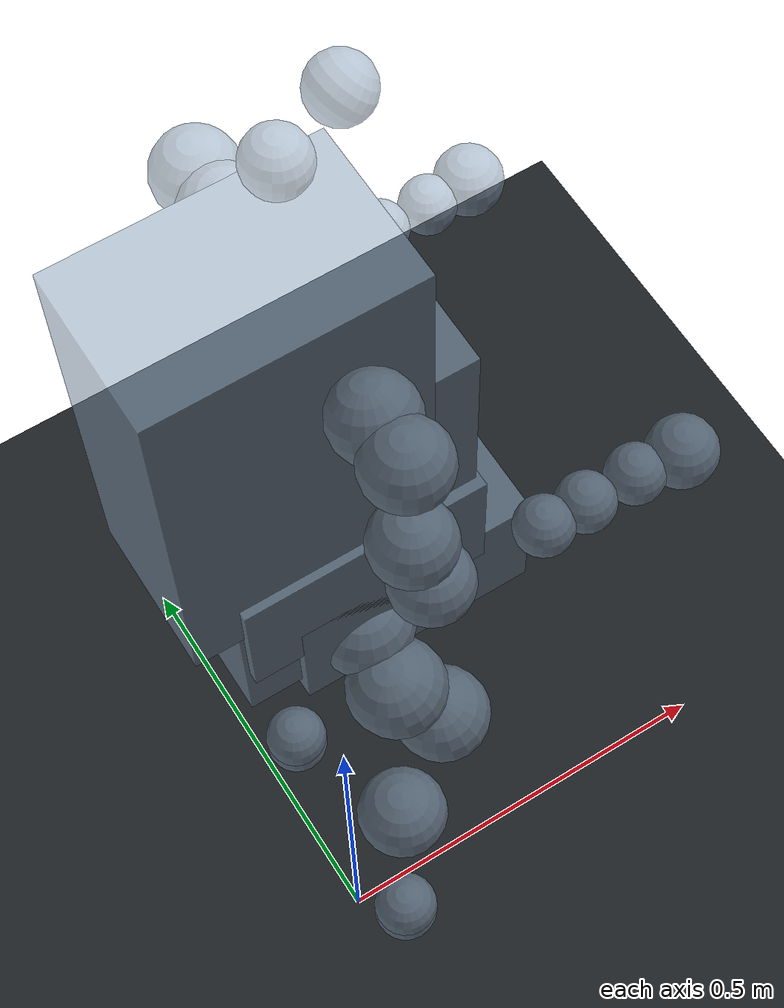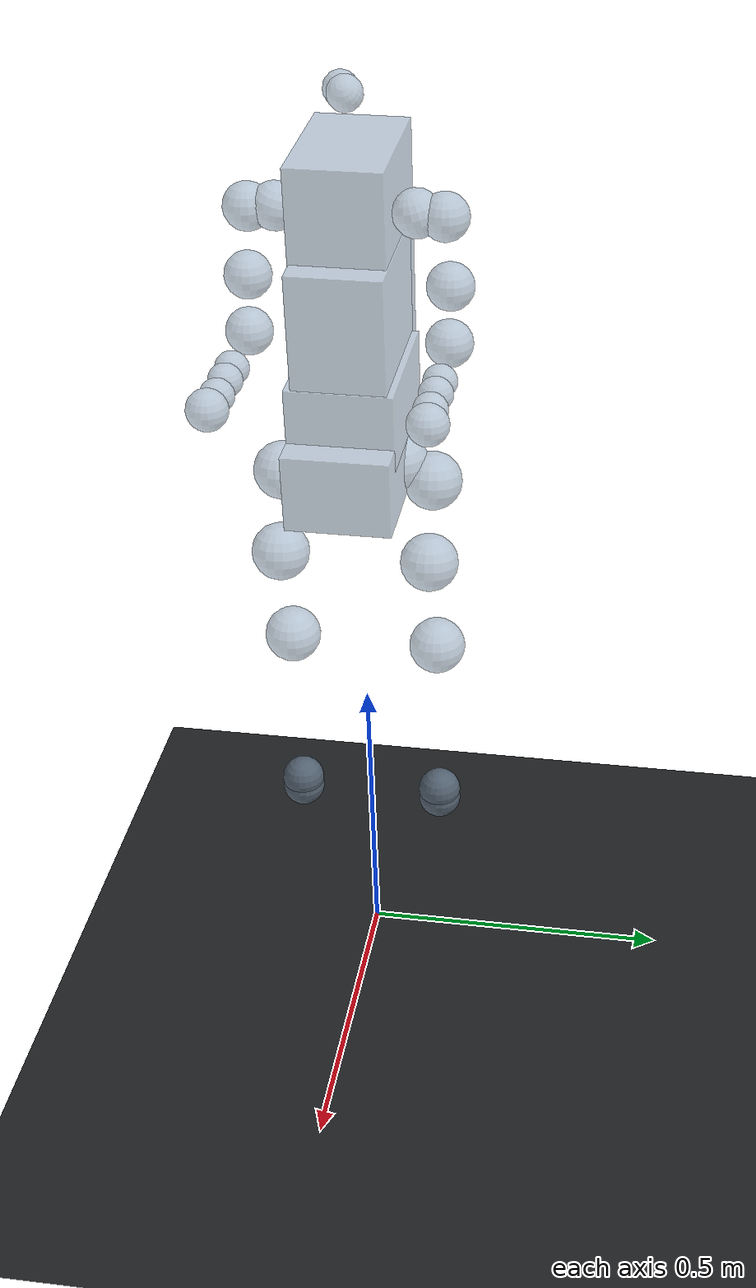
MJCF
<?xml version='1.0' encoding='utf-8'?>
<mujoco model="g1_29dof">
  <compiler angle="radian" />
  <option timestep="0.008333333" gravity="0 0 -9.81" />
  <default>
    <joint damping="0.3" armature="0.01" />
    <geom friction="0.8 0.01 0.001" density="250" />
  </default>
  <worldbody>
    <geom name="floor" type="plane" size="3 3 0.02" rgba="0.12 0.13 0.14 1" />
    <body name="pelvis" pos="0 0 1.05">
      <freejoint name="pelvis_freejoint" />
      <geom name="pelvis_proxy" type="box" size="0.11 0.08 0.06" rgba="0.55 0.65 0.75 0.55" />
      <body name="pelvis_contour_link" pos="0 0 0" quat="1 0 0 0">
        <geom name="pelvis_contour_link_proxy" type="box" size="0.11 0.08 0.06" rgba="0.55 0.65 0.75 0.55" />
      </body>
      <body name="left_hip_pitch_link" pos="0 0.064452 -0.1027" quat="1 0 0 0">
        <joint name="left_hip_pitch_joint" type="hinge" axis="0 1 0" damping="0.3" armature="0.01" limited="true" range="-2.5307 2.8798" />
        <geom name="left_hip_pitch_link_proxy" type="sphere" size="0.045" rgba="0.55 0.65 0.75 0.55" />
        <body name="left_hip_roll_link" pos="0 0.052 -0.030465" quat="0.996178685 0 -0.08733858026 0">
          <joint name="left_hip_roll_joint" type="hinge" axis="1 0 0" damping="0.3" armature="0.01" limited="true" range="-0.5236 2.9671" />
          <geom name="left_hip_roll_link_proxy" type="sphere" size="0.045" rgba="0.55 0.65 0.75 0.55" />
          <body name="left_hip_yaw_link" pos="0.025001 0 -0.12412" quat="1 0 0 0">
            <joint name="left_hip_yaw_joint" type="hinge" axis="0 0 1" damping="0.3" armature="0.01" limited="true" range="-2.7576 2.7576" />
            <geom name="left_hip_yaw_link_proxy" type="sphere" size="0.045" rgba="0.55 0.65 0.75 0.55" />
            <body name="left_knee_link" pos="-0.078273 0.0021489 -0.17734" quat="0.996178685 0 0.08733858026 0">
              <joint name="left_knee_joint" type="hinge" axis="0 1 0" damping="0.3" armature="0.01" limited="true" range="-0.087267 2.8798" />
              <geom name="left_knee_link_proxy" type="sphere" size="0.045" rgba="0.55 0.65 0.75 0.55" />
              <body name="left_ankle_pitch_link" pos="0 -9.4445e-05 -0.30001" quat="1 0 0 0">
                <joint name="left_ankle_pitch_joint" type="hinge" axis="0 1 0" damping="0.3" armature="0.01" limited="true" range="-0.87267 0.5236" />
                <geom name="left_ankle_pitch_link_proxy" type="sphere" size="0.035" rgba="0.55 0.65 0.75 0.55" />
                <body name="left_ankle_roll_link" pos="0 0 -0.017558" quat="1 0 0 0">
                  <joint name="left_ankle_roll_joint" type="hinge" axis="1 0 0" damping="0.3" armature="0.01" limited="true" range="-0.2618 0.2618" />
                  <geom name="left_ankle_roll_link_proxy" type="sphere" size="0.035" rgba="0.55 0.65 0.75 0.55" />
                </body>
              </body>
            </body>
          </body>
        </body>
      </body>
      <body name="right_hip_pitch_link" pos="0 -0.064452 -0.1027" quat="1 0 0 0">
        <joint name="right_hip_pitch_joint" type="hinge" axis="0 1 0" damping="0.3" armature="0.01" limited="true" range="-2.5307 2.8798" />
        <geom name="right_hip_pitch_link_proxy" type="sphere" size="0.045" rgba="0.55 0.65 0.75 0.55" />
        <body name="right_hip_roll_link" pos="0 -0.052 -0.030465" quat="0.996178685 0 -0.08733858026 0">
          <joint name="right_hip_roll_joint" type="hinge" axis="1 0 0" damping="0.3" armature="0.01" limited="true" range="-2.9671 0.5236" />
          <geom name="right_hip_roll_link_proxy" type="sphere" size="0.045" rgba="0.55 0.65 0.75 0.55" />
          <body name="right_hip_yaw_link" pos="0.025001 0 -0.12412" quat="1 0 0 0">
            <joint name="right_hip_yaw_joint" type="hinge" axis="0 0 1" damping="0.3" armature="0.01" limited="true" range="-2.7576 2.7576" />
            <geom name="right_hip_yaw_link_proxy" type="sphere" size="0.045" rgba="0.55 0.65 0.75 0.55" />
            <body name="right_knee_link" pos="-0.078273 -0.0021489 -0.17734" quat="0.996178685 0 0.08733858026 0">
              <joint name="right_knee_joint" type="hinge" axis="0 1 0" damping="0.3" armature="0.01" limited="true" range="-0.087267 2.8798" />
              <geom name="right_knee_link_proxy" type="sphere" size="0.045" rgba="0.55 0.65 0.75 0.55" />
              <body name="right_ankle_pitch_link" pos="0 9.4445e-05 -0.30001" quat="1 0 0 0">
                <joint name="right_ankle_pitch_joint" type="hinge" axis="0 1 0" damping="0.3" armature="0.01" limited="true" range="-0.87267 0.5236" />
                <geom name="right_ankle_pitch_link_proxy" type="sphere" size="0.035" rgba="0.55 0.65 0.75 0.55" />
                <body name="right_ankle_roll_link" pos="0 0 -0.017558" quat="1 0 0 0">
                  <joint name="right_ankle_roll_joint" type="hinge" axis="1 0 0" damping="0.3" armature="0.01" limited="true" range="-0.2618 0.2618" />
                  <geom name="right_ankle_roll_link_proxy" type="sphere" size="0.035" rgba="0.55 0.65 0.75 0.55" />
                </body>
              </body>
            </body>
          </body>
        </body>
      </body>
      <body name="waist_yaw_link" pos="0 0 0" quat="1 0 0 0">
        <joint name="waist_yaw_joint" type="hinge" axis="0 0 1" damping="0.3" armature="0.01" limited="true" range="-2.618 2.618" />
        <geom name="waist_yaw_link_proxy" type="sphere" size="0.025" rgba="0.55 0.65 0.75 0.55" />
        <body name="waist_roll_link" pos="-0.0039635 0 0.035" quat="1 0 0 0">
          <joint name="waist_roll_joint" type="hinge" axis="1 0 0" damping="0.3" armature="0.01" limited="true" range="-0.52 0.52" />
          <geom name="waist_roll_link_proxy" type="sphere" size="0.025" rgba="0.55 0.65 0.75 0.55" />
          <body name="torso_link" pos="0 0 0.019" quat="1 0 0 0">
            <joint name="waist_pitch_joint" type="hinge" axis="0 1 0" damping="0.3" armature="0.01" limited="true" range="-0.52 0.52" />
            <geom name="torso_link_proxy" type="box" size="0.11 0.07 0.18" rgba="0.55 0.65 0.75 0.55" />
            <body name="logo_link" pos="0.0039635 0 -0.054" quat="1 0 0 0">
              <geom name="logo_link_proxy" type="sphere" size="0.025" rgba="0.55 0.65 0.75 0.55" />
            </body>
            <body name="head_link" pos="0.0039635 0 -0.054" quat="1 0 0 0">
              <geom name="head_link_proxy" type="sphere" size="0.055" rgba="0.55 0.65 0.75 0.55" />
            </body>
            <body name="waist_support_link" pos="0.0039635 0 -0.054" quat="1 0 0 0">
              <geom name="waist_support_link_proxy" type="sphere" size="0.025" rgba="0.55 0.65 0.75 0.55" />
            </body>
            <body name="imu_in_torso" pos="-0.03959 -0.00224 0.13792" quat="1 0 0 0">
              <geom name="imu_in_torso_proxy" type="box" size="0.11 0.07 0.18" rgba="0.55 0.65 0.75 0.55" />
            </body>
            <body name="d435_link" pos="0.0576235 0.01753 0.41987" quat="0.9149596678 0 0.4035452964 0">
              <geom name="d435_link_proxy" type="sphere" size="0.025" rgba="0.55 0.65 0.75 0.55" />
            </body>
            <body name="mid360_link" pos="0.0002835 3e-05 0.40618" quat="0.9997985785 0 0.02006993878 0">
              <geom name="mid360_link_proxy" type="sphere" size="0.025" rgba="0.55 0.65 0.75 0.55" />
            </body>
            <body name="left_shoulder_pitch_link" pos="0.0039563 0.10022 0.23778" quat="0.9902640744 0.1392014837 1.38722044e-05 -9.868683842e-05">
              <joint name="left_shoulder_pitch_joint" type="hinge" axis="0 1 0" damping="0.3" armature="0.01" limited="true" range="-3.0892 2.6704" />
              <geom name="left_shoulder_pitch_link_proxy" type="sphere" size="0.035" rgba="0.55 0.65 0.75 0.55" />
              <body name="left_shoulder_roll_link" pos="0 0.038 -0.013831" quat="0.9902682553 -0.1391717738 0 0">
                <joint name="left_shoulder_roll_joint" type="hinge" axis="1 0 0" damping="0.3" armature="0.01" limited="true" range="-1.5882 2.2515" />
                <geom name="left_shoulder_roll_link_proxy" type="sphere" size="0.035" rgba="0.55 0.65 0.75 0.55" />
                <body name="left_shoulder_yaw_link" pos="0 0.00624 -0.1032" quat="1 0 0 0">
                  <joint name="left_shoulder_yaw_joint" type="hinge" axis="0 0 1" damping="0.3" armature="0.01" limited="true" range="-2.618 2.618" />
                  <geom name="left_shoulder_yaw_link_proxy" type="sphere" size="0.035" rgba="0.55 0.65 0.75 0.55" />
                  <body name="left_elbow_link" pos="0.015783 0 -0.080518" quat="1 0 0 0">
                    <joint name="left_elbow_joint" type="hinge" axis="0 1 0" damping="0.3" armature="0.01" limited="true" range="-1.0472 2.0944" />
                    <geom name="left_elbow_link_proxy" type="sphere" size="0.035" rgba="0.55 0.65 0.75 0.55" />
                    <body name="left_wrist_roll_link" pos="0.1 0.00188791 -0.01" quat="1 0 0 0">
                      <joint name="left_wrist_roll_joint" type="hinge" axis="1 0 0" damping="0.3" armature="0.01" limited="true" range="-1.972222054 1.972222054" />
                      <geom name="left_wrist_roll_link_proxy" type="sphere" size="0.025" rgba="0.55 0.65 0.75 0.55" />
                      <body name="left_wrist_pitch_link" pos="0.038 0 0" quat="1 0 0 0">
                        <joint name="left_wrist_pitch_joint" type="hinge" axis="0 1 0" damping="0.3" armature="0.01" limited="true" range="-1.614429558 1.614429558" />
                        <geom name="left_wrist_pitch_link_proxy" type="sphere" size="0.025" rgba="0.55 0.65 0.75 0.55" />
                        <body name="left_wrist_yaw_link" pos="0.046 0 0" quat="1 0 0 0">
                          <joint name="left_wrist_yaw_joint" type="hinge" axis="0 0 1" damping="0.3" armature="0.01" limited="true" range="-1.614429558 1.614429558" />
                          <geom name="left_wrist_yaw_link_proxy" type="sphere" size="0.025" rgba="0.55 0.65 0.75 0.55" />
                          <body name="left_rubber_hand" pos="0.0415 0.003 0" quat="1 0 0 0">
                            <geom name="left_rubber_hand_proxy" type="sphere" size="0.03" rgba="0.55 0.65 0.75 0.55" />
                          </body>
                        </body>
                      </body>
                    </body>
                  </body>
                </body>
              </body>
            </body>
            <body name="right_shoulder_pitch_link" pos="0.0039563 -0.10021 0.23778" quat="0.9902640744 -0.1392014837 1.38722044e-05 9.868683842e-05">
              <joint name="right_shoulder_pitch_joint" type="hinge" axis="0 1 0" damping="0.3" armature="0.01" limited="true" range="-3.0892 2.6704" />
              <geom name="right_shoulder_pitch_link_proxy" type="sphere" size="0.035" rgba="0.55 0.65 0.75 0.55" />
              <body name="right_shoulder_roll_link" pos="0 -0.038 -0.013831" quat="0.9902682553 0.1391717738 0 0">
                <joint name="right_shoulder_roll_joint" type="hinge" axis="1 0 0" damping="0.3" armature="0.01" limited="true" range="-2.2515 1.5882" />
                <geom name="right_shoulder_roll_link_proxy" type="sphere" size="0.035" rgba="0.55 0.65 0.75 0.55" />
                <body name="right_shoulder_yaw_link" pos="0 -0.00624 -0.1032" quat="1 0 0 0">
                  <joint name="right_shoulder_yaw_joint" type="hinge" axis="0 0 1" damping="0.3" armature="0.01" limited="true" range="-2.618 2.618" />
                  <geom name="right_shoulder_yaw_link_proxy" type="sphere" size="0.035" rgba="0.55 0.65 0.75 0.55" />
                  <body name="right_elbow_link" pos="0.015783 0 -0.080518" quat="1 0 0 0">
                    <joint name="right_elbow_joint" type="hinge" axis="0 1 0" damping="0.3" armature="0.01" limited="true" range="-1.0472 2.0944" />
                    <geom name="right_elbow_link_proxy" type="sphere" size="0.035" rgba="0.55 0.65 0.75 0.55" />
                    <body name="right_wrist_roll_link" pos="0.1 -0.00188791 -0.01" quat="1 0 0 0">
                      <joint name="right_wrist_roll_joint" type="hinge" axis="1 0 0" damping="0.3" armature="0.01" limited="true" range="-1.972222054 1.972222054" />
                      <geom name="right_wrist_roll_link_proxy" type="sphere" size="0.025" rgba="0.55 0.65 0.75 0.55" />
                      <body name="right_wrist_pitch_link" pos="0.038 0 0" quat="1 0 0 0">
                        <joint name="right_wrist_pitch_joint" type="hinge" axis="0 1 0" damping="0.3" armature="0.01" limited="true" range="-1.614429558 1.614429558" />
                        <geom name="right_wrist_pitch_link_proxy" type="sphere" size="0.025" rgba="0.55 0.65 0.75 0.55" />
                        <body name="right_wrist_yaw_link" pos="0.046 0 0" quat="1 0 0 0">
                          <joint name="right_wrist_yaw_joint" type="hinge" axis="0 0 1" damping="0.3" armature="0.01" limited="true" range="-1.614429558 1.614429558" />
                          <geom name="right_wrist_yaw_link_proxy" type="sphere" size="0.025" rgba="0.55 0.65 0.75 0.55" />
                          <body name="right_rubber_hand" pos="0.0415 -0.003 0" quat="1 0 0 0">
                            <geom name="right_rubber_hand_proxy" type="sphere" size="0.03" rgba="0.55 0.65 0.75 0.55" />
                          </body>
                        </body>
                      </body>
                    </body>
                  </body>
                </body>
              </body>
            </body>
          </body>
        </body>
      </body>
      <body name="imu_in_pelvis" pos="0.04525 0 -0.08339" quat="1 0 0 0">
        <geom name="imu_in_pelvis_proxy" type="box" size="0.11 0.08 0.06" rgba="0.55 0.65 0.75 0.55" />
      </body>
    </body>
  </worldbody>
  <actuator>
    <position name="left_hip_pitch_joint_position" joint="left_hip_pitch_joint" kp="15" ctrlrange="-2.5307 2.8798" />
    <position name="left_hip_roll_joint_position" joint="left_hip_roll_joint" kp="15" ctrlrange="-0.5236 2.9671" />
    <position name="left_hip_yaw_joint_position" joint="left_hip_yaw_joint" kp="15" ctrlrange="-2.7576 2.7576" />
    <position name="left_knee_joint_position" joint="left_knee_joint" kp="15" ctrlrange="-0.087267 2.8798" />
    <position name="left_ankle_pitch_joint_position" joint="left_ankle_pitch_joint" kp="15" ctrlrange="-0.87267 0.5236" />
    <position name="left_ankle_roll_joint_position" joint="left_ankle_roll_joint" kp="15" ctrlrange="-0.2618 0.2618" />
    <position name="right_hip_pitch_joint_position" joint="right_hip_pitch_joint" kp="15" ctrlrange="-2.5307 2.8798" />
    <position name="right_hip_roll_joint_position" joint="right_hip_roll_joint" kp="15" ctrlrange="-2.9671 0.5236" />
    <position name="right_hip_yaw_joint_position" joint="right_hip_yaw_joint" kp="15" ctrlrange="-2.7576 2.7576" />
    <position name="right_knee_joint_position" joint="right_knee_joint" kp="15" ctrlrange="-0.087267 2.8798" />
    <position name="right_ankle_pitch_joint_position" joint="right_ankle_pitch_joint" kp="15" ctrlrange="-0.87267 0.5236" />
    <position name="right_ankle_roll_joint_position" joint="right_ankle_roll_joint" kp="15" ctrlrange="-0.2618 0.2618" />
    <position name="waist_yaw_joint_position" joint="waist_yaw_joint" kp="15" ctrlrange="-2.618 2.618" />
    <position name="waist_roll_joint_position" joint="waist_roll_joint" kp="15" ctrlrange="-0.52 0.52" />
    <position name="waist_pitch_joint_position" joint="waist_pitch_joint" kp="15" ctrlrange="-0.52 0.52" />
    <position name="left_shoulder_pitch_joint_position" joint="left_shoulder_pitch_joint" kp="15" ctrlrange="-3.0892 2.6704" />
    <position name="left_shoulder_roll_joint_position" joint="left_shoulder_roll_joint" kp="15" ctrlrange="-1.5882 2.2515" />
    <position name="left_shoulder_yaw_joint_position" joint="left_shoulder_yaw_joint" kp="15" ctrlrange="-2.618 2.618" />
    <position name="left_elbow_joint_position" joint="left_elbow_joint" kp="15" ctrlrange="-1.0472 2.0944" />
    <position name="left_wrist_roll_joint_position" joint="left_wrist_roll_joint" kp="15" ctrlrange="-1.972222054 1.972222054" />
    <position name="left_wrist_pitch_joint_position" joint="left_wrist_pitch_joint" kp="15" ctrlrange="-1.614429558 1.614429558" />
    <position name="left_wrist_yaw_joint_position" joint="left_wrist_yaw_joint" kp="15" ctrlrange="-1.614429558 1.614429558" />
    <position name="right_shoulder_pitch_joint_position" joint="right_shoulder_pitch_joint" kp="15" ctrlrange="-3.0892 2.6704" />
    <position name="right_shoulder_roll_joint_position" joint="right_shoulder_roll_joint" kp="15" ctrlrange="-2.2515 1.5882" />
    <position name="right_shoulder_yaw_joint_position" joint="right_shoulder_yaw_joint" kp="15" ctrlrange="-2.618 2.618" />
    <position name="right_elbow_joint_position" joint="right_elbow_joint" kp="15" ctrlrange="-1.0472 2.0944" />
    <position name="right_wrist_roll_joint_position" joint="right_wrist_roll_joint" kp="15" ctrlrange="-1.972222054 1.972222054" />
    <position name="right_wrist_pitch_joint_position" joint="right_wrist_pitch_joint" kp="15" ctrlrange="-1.614429558 1.614429558" />
    <position name="right_wrist_yaw_joint_position" joint="right_wrist_yaw_joint" kp="15" ctrlrange="-1.614429558 1.614429558" />
  </actuator>
  <sensor>
    <jointpos name="left_hip_pitch_joint_pos" joint="left_hip_pitch_joint" />
    <jointpos name="left_hip_roll_joint_pos" joint="left_hip_roll_joint" />
    <jointpos name="left_hip_yaw_joint_pos" joint="left_hip_yaw_joint" />
    <jointpos name="left_knee_joint_pos" joint="left_knee_joint" />
    <jointpos name="left_ankle_pitch_joint_pos" joint="left_ankle_pitch_joint" />
    <jointpos name="left_ankle_roll_joint_pos" joint="left_ankle_roll_joint" />
    <jointpos name="right_hip_pitch_joint_pos" joint="right_hip_pitch_joint" />
    <jointpos name="right_hip_roll_joint_pos" joint="right_hip_roll_joint" />
    <jointpos name="right_hip_yaw_joint_pos" joint="right_hip_yaw_joint" />
    <jointpos name="right_knee_joint_pos" joint="right_knee_joint" />
    <jointpos name="right_ankle_pitch_joint_pos" joint="right_ankle_pitch_joint" />
    <jointpos name="right_ankle_roll_joint_pos" joint="right_ankle_roll_joint" />
    <jointpos name="waist_yaw_joint_pos" joint="waist_yaw_joint" />
    <jointpos name="waist_roll_joint_pos" joint="waist_roll_joint" />
    <jointpos name="waist_pitch_joint_pos" joint="waist_pitch_joint" />
    <jointpos name="left_shoulder_pitch_joint_pos" joint="left_shoulder_pitch_joint" />
    <jointpos name="left_shoulder_roll_joint_pos" joint="left_shoulder_roll_joint" />
    <jointpos name="left_shoulder_yaw_joint_pos" joint="left_shoulder_yaw_joint" />
    <jointpos name="left_elbow_joint_pos" joint="left_elbow_joint" />
    <jointpos name="left_wrist_roll_joint_pos" joint="left_wrist_roll_joint" />
    <jointpos name="left_wrist_pitch_joint_pos" joint="left_wrist_pitch_joint" />
    <jointpos name="left_wrist_yaw_joint_pos" joint="left_wrist_yaw_joint" />
    <jointpos name="right_shoulder_pitch_joint_pos" joint="right_shoulder_pitch_joint" />
    <jointpos name="right_shoulder_roll_joint_pos" joint="right_shoulder_roll_joint" />
    <jointpos name="right_shoulder_yaw_joint_pos" joint="right_shoulder_yaw_joint" />
    <jointpos name="right_elbow_joint_pos" joint="right_elbow_joint" />
    <jointpos name="right_wrist_roll_joint_pos" joint="right_wrist_roll_joint" />
    <jointpos name="right_wrist_pitch_joint_pos" joint="right_wrist_pitch_joint" />
    <jointpos name="right_wrist_yaw_joint_pos" joint="right_wrist_yaw_joint" />
  </sensor>
</mujoco>
